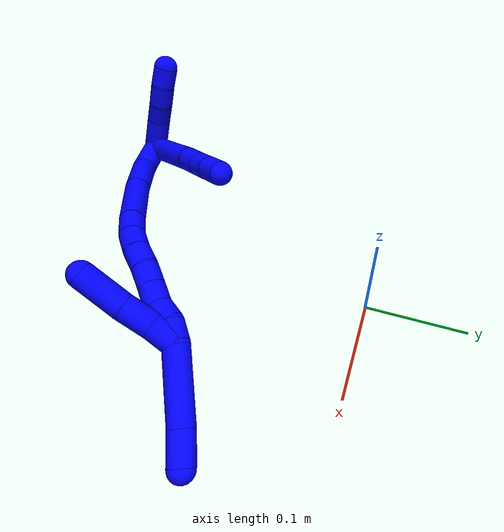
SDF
<sdf version="1.7">
 <world name="default">
  <model name="1">
   <static>0</static>
   <link name="1">
    <collision name="collision-cylinder-e_1_2_8">
     <pose>-0.008924 0.031201 -0.027361 -2.29072 -0.211815 0.46089</pose>
     <geometry><cylinder><radius>0.0125</radius><length>0.084894</length></cylinder></geometry>
     <surface>
      <friction><ode><mu>1.16</mu><mu2>1.16</mu2><slip1>0</slip1><slip2>0</slip2></ode></friction>
      <contact><ode><kp>1e+06</kp><kd>1</kd><max_vel>0</max_vel><min_depth>0.001</min_depth></ode></contact>
     </surface>
    </collision>
    <visual name="visual-cylinder-e_1_2_8">
     <pose>-0.008924 0.031201 -0.027361 -2.29072 -0.211815 0.46089</pose>
     <geometry><cylinder><radius>0.0125</radius><length>0.084894</length></cylinder></geometry>
     <material><ambient>0 0 1 1</ambient></material>
    </visual>
    <collision name="collision-cylinder-e_2_8_9">
     <pose>-0.01961 0.070592 -0.062775 -2.34774 -0.152276 0.36004</pose>
     <geometry><cylinder><radius>0.0125</radius><length>0.023241</length></cylinder></geometry>
     <surface>
      <friction><ode><mu>1.16</mu><mu2>1.16</mu2><slip1>0</slip1><slip2>0</slip2></ode></friction>
      <contact><ode><kp>1e+06</kp><kd>1</kd><max_vel>0</max_vel><min_depth>0.001</min_depth></ode></contact>
     </surface>
    </collision>
    <visual name="visual-cylinder-e_2_8_9">
     <pose>-0.01961 0.070592 -0.062775 -2.34774 -0.152276 0.36004</pose>
     <geometry><cylinder><radius>0.0125</radius><length>0.023241</length></cylinder></geometry>
     <material><ambient>0 0 1 1</ambient></material>
    </visual>
    <collision name="collision-cylinder-e_3_9_10">
     <pose>-0.023143 0.086074 -0.077447 -2.3079 -0.177837 0.397376</pose>
     <geometry><cylinder><radius>0.0125</radius><length>0.020013</length></cylinder></geometry>
     <surface>
      <friction><ode><mu>1.16</mu><mu2>1.16</mu2><slip1>0</slip1><slip2>0</slip2></ode></friction>
      <contact><ode><kp>1e+06</kp><kd>1</kd><max_vel>0</max_vel><min_depth>0.001</min_depth></ode></contact>
     </surface>
    </collision>
    <visual name="visual-cylinder-e_3_9_10">
     <pose>-0.023143 0.086074 -0.077447 -2.3079 -0.177837 0.397376</pose>
     <geometry><cylinder><radius>0.0125</radius><length>0.020013</length></cylinder></geometry>
     <material><ambient>0 0 1 1</ambient></material>
    </visual>
    <collision name="collision-cylinder-e_4_10_6">
     <pose>-0.026735 0.101105 -0.091562 -2.34019 -0.167538 0.391347</pose>
     <geometry><cylinder><radius>0.0125</radius><length>0.021852</length></cylinder></geometry>
     <surface>
      <friction><ode><mu>1.16</mu><mu2>1.16</mu2><slip1>0</slip1><slip2>0</slip2></ode></friction>
      <contact><ode><kp>1e+06</kp><kd>1</kd><max_vel>0</max_vel><min_depth>0.001</min_depth></ode></contact>
     </surface>
    </collision>
    <visual name="visual-cylinder-e_4_10_6">
     <pose>-0.026735 0.101105 -0.091562 -2.34019 -0.167538 0.391347</pose>
     <geometry><cylinder><radius>0.0125</radius><length>0.021852</length></cylinder></geometry>
     <material><ambient>0 0 1 1</ambient></material>
    </visual>
    <collision name="collision-cylinder-e_1_2_11">
     <pose>-0.016976 0.006355 0.003001 -1.12966 -1.1783 0.801232</pose>
     <geometry><cylinder><radius>0.0125</radius><length>0.036747</length></cylinder></geometry>
     <surface>
      <friction><ode><mu>1.16</mu><mu2>1.16</mu2><slip1>0</slip1><slip2>0</slip2></ode></friction>
      <contact><ode><kp>1e+06</kp><kd>1</kd><max_vel>0</max_vel><min_depth>0.001</min_depth></ode></contact>
     </surface>
    </collision>
    <visual name="visual-cylinder-e_1_2_11">
     <pose>-0.016976 0.006355 0.003001 -1.12966 -1.1783 0.801232</pose>
     <geometry><cylinder><radius>0.0125</radius><length>0.036747</length></cylinder></geometry>
     <material><ambient>0 0 1 1</ambient></material>
    </visual>
    <collision name="collision-cylinder-e_2_11_12">
     <pose>-0.04319 0.017951 0.00691 -1.39917 -1.04832 0.905605</pose>
     <geometry><cylinder><radius>0.0125</radius><length>0.021321</length></cylinder></geometry>
     <surface>
      <friction><ode><mu>1.16</mu><mu2>1.16</mu2><slip1>0</slip1><slip2>0</slip2></ode></friction>
      <contact><ode><kp>1e+06</kp><kd>1</kd><max_vel>0</max_vel><min_depth>0.001</min_depth></ode></contact>
     </surface>
    </collision>
    <visual name="visual-cylinder-e_2_11_12">
     <pose>-0.04319 0.017951 0.00691 -1.39917 -1.04832 0.905605</pose>
     <geometry><cylinder><radius>0.0125</radius><length>0.021321</length></cylinder></geometry>
     <material><ambient>0 0 1 1</ambient></material>
    </visual>
    <collision name="collision-cylinder-e_3_12_13">
     <pose>-0.062362 0.027271 0.009564 -1.16626 -1.15082 0.808594</pose>
     <geometry><cylinder><radius>0.0125</radius><length>0.021759</length></cylinder></geometry>
     <surface>
      <friction><ode><mu>1.16</mu><mu2>1.16</mu2><slip1>0</slip1><slip2>0</slip2></ode></friction>
      <contact><ode><kp>1e+06</kp><kd>1</kd><max_vel>0</max_vel><min_depth>0.001</min_depth></ode></contact>
     </surface>
    </collision>
    <visual name="visual-cylinder-e_3_12_13">
     <pose>-0.062362 0.027271 0.009564 -1.16626 -1.15082 0.808594</pose>
     <geometry><cylinder><radius>0.0125</radius><length>0.021759</length></cylinder></geometry>
     <material><ambient>0 0 1 1</ambient></material>
    </visual>
    <collision name="collision-cylinder-e_4_13_5">
     <pose>-0.081978 0.033631 0.012982 -0.938591 -1.28651 0.726498</pose>
     <geometry><cylinder><radius>0.0125</radius><length>0.020174</length></cylinder></geometry>
     <surface>
      <friction><ode><mu>1.16</mu><mu2>1.16</mu2><slip1>0</slip1><slip2>0</slip2></ode></friction>
      <contact><ode><kp>1e+06</kp><kd>1</kd><max_vel>0</max_vel><min_depth>0.001</min_depth></ode></contact>
     </surface>
    </collision>
    <visual name="visual-cylinder-e_4_13_5">
     <pose>-0.081978 0.033631 0.012982 -0.938591 -1.28651 0.726498</pose>
     <geometry><cylinder><radius>0.0125</radius><length>0.020174</length></cylinder></geometry>
     <material><ambient>0 0 1 1</ambient></material>
    </visual>
    <collision name="collision-cylinder-e_1_2_14">
     <pose>0.009573 0.021617 -0.004527 -1.77724 0.409026 -0.500017</pose>
     <geometry><cylinder><radius>0.0125</radius><length>0.048142</length></cylinder></geometry>
     <surface>
      <friction><ode><mu>1.16</mu><mu2>1.16</mu2><slip1>0</slip1><slip2>0</slip2></ode></friction>
      <contact><ode><kp>1e+06</kp><kd>1</kd><max_vel>0</max_vel><min_depth>0.001</min_depth></ode></contact>
     </surface>
    </collision>
    <visual name="visual-cylinder-e_1_2_14">
     <pose>0.009573 0.021617 -0.004527 -1.77724 0.409026 -0.500017</pose>
     <geometry><cylinder><radius>0.0125</radius><length>0.048142</length></cylinder></geometry>
     <material><ambient>0 0 1 1</ambient></material>
    </visual>
    <collision name="collision-cylinder-e_2_14_15">
     <pose>0.025119 0.06446 -0.015869 -1.88145 0.261754 -0.357164</pose>
     <geometry><cylinder><radius>0.0125</radius><length>0.04616</length></cylinder></geometry>
     <surface>
      <friction><ode><mu>1.16</mu><mu2>1.16</mu2><slip1>0</slip1><slip2>0</slip2></ode></friction>
      <contact><ode><kp>1e+06</kp><kd>1</kd><max_vel>0</max_vel><min_depth>0.001</min_depth></ode></contact>
     </surface>
    </collision>
    <visual name="visual-cylinder-e_2_14_15">
     <pose>0.025119 0.06446 -0.015869 -1.88145 0.261754 -0.357164</pose>
     <geometry><cylinder><radius>0.0125</radius><length>0.04616</length></cylinder></geometry>
     <material><ambient>0 0 1 1</ambient></material>
    </visual>
    <collision name="collision-cylinder-e_3_15_16">
     <pose>0.038735 0.113348 -0.034101 -1.96226 0.250052 -0.371361</pose>
     <geometry><cylinder><radius>0.0125</radius><length>0.061772</length></cylinder></geometry>
     <surface>
      <friction><ode><mu>1.16</mu><mu2>1.16</mu2><slip1>0</slip1><slip2>0</slip2></ode></friction>
      <contact><ode><kp>1e+06</kp><kd>1</kd><max_vel>0</max_vel><min_depth>0.001</min_depth></ode></contact>
     </surface>
    </collision>
    <visual name="visual-cylinder-e_3_15_16">
     <pose>0.038735 0.113348 -0.034101 -1.96226 0.250052 -0.371361</pose>
     <geometry><cylinder><radius>0.0125</radius><length>0.061772</length></cylinder></geometry>
     <material><ambient>0 0 1 1</ambient></material>
    </visual>
    <collision name="collision-cylinder-e_4_16_17">
     <pose>0.049751 0.150483 -0.050816 -2.08058 0.301345 -0.506525</pose>
     <geometry><cylinder><radius>0.0125</radius><length>0.02273</length></cylinder></geometry>
     <surface>
      <friction><ode><mu>1.16</mu><mu2>1.16</mu2><slip1>0</slip1><slip2>0</slip2></ode></friction>
      <contact><ode><kp>1e+06</kp><kd>1</kd><max_vel>0</max_vel><min_depth>0.001</min_depth></ode></contact>
     </surface>
    </collision>
    <visual name="visual-cylinder-e_4_16_17">
     <pose>0.049751 0.150483 -0.050816 -2.08058 0.301345 -0.506525</pose>
     <geometry><cylinder><radius>0.0125</radius><length>0.02273</length></cylinder></geometry>
     <material><ambient>0 0 1 1</ambient></material>
    </visual>
    <collision name="collision-cylinder-e_5_17_18">
     <pose>0.05606 0.167074 -0.062626 -2.31196 0.295358 -0.651556</pose>
     <geometry><cylinder><radius>0.0125</radius><length>0.020171</length></cylinder></geometry>
     <surface>
      <friction><ode><mu>1.16</mu><mu2>1.16</mu2><slip1>0</slip1><slip2>0</slip2></ode></friction>
      <contact><ode><kp>1e+06</kp><kd>1</kd><max_vel>0</max_vel><min_depth>0.001</min_depth></ode></contact>
     </surface>
    </collision>
    <visual name="visual-cylinder-e_5_17_18">
     <pose>0.05606 0.167074 -0.062626 -2.31196 0.295358 -0.651556</pose>
     <geometry><cylinder><radius>0.0125</radius><length>0.020171</length></cylinder></geometry>
     <material><ambient>0 0 1 1</ambient></material>
    </visual>
    <collision name="collision-cylinder-e_6_18_19">
     <pose>0.062013 0.180385 -0.076982 -2.4731 0.293262 -0.804221</pose>
     <geometry><cylinder><radius>0.0125</radius><length>0.020876</length></cylinder></geometry>
     <surface>
      <friction><ode><mu>1.16</mu><mu2>1.16</mu2><slip1>0</slip1><slip2>0</slip2></ode></friction>
      <contact><ode><kp>1e+06</kp><kd>1</kd><max_vel>0</max_vel><min_depth>0.001</min_depth></ode></contact>
     </surface>
    </collision>
    <visual name="visual-cylinder-e_6_18_19">
     <pose>0.062013 0.180385 -0.076982 -2.4731 0.293262 -0.804221</pose>
     <geometry><cylinder><radius>0.0125</radius><length>0.020876</length></cylinder></geometry>
     <material><ambient>0 0 1 1</ambient></material>
    </visual>
    <collision name="collision-cylinder-e_7_19_20">
     <pose>0.069522 0.191855 -0.092108 -2.51469 0.463075 -1.25771</pose>
     <geometry><cylinder><radius>0.0125</radius><length>0.020108</length></cylinder></geometry>
     <surface>
      <friction><ode><mu>1.16</mu><mu2>1.16</mu2><slip1>0</slip1><slip2>0</slip2></ode></friction>
      <contact><ode><kp>1e+06</kp><kd>1</kd><max_vel>0</max_vel><min_depth>0.001</min_depth></ode></contact>
     </surface>
    </collision>
    <visual name="visual-cylinder-e_7_19_20">
     <pose>0.069522 0.191855 -0.092108 -2.51469 0.463075 -1.25771</pose>
     <geometry><cylinder><radius>0.0125</radius><length>0.020108</length></cylinder></geometry>
     <material><ambient>0 0 1 1</ambient></material>
    </visual>
    <collision name="collision-cylinder-e_8_20_21">
     <pose>0.078575 0.20236 -0.106595 -2.51366 0.473653 -1.27841</pose>
     <geometry><cylinder><radius>0.0125</radius><length>0.020003</length></cylinder></geometry>
     <surface>
      <friction><ode><mu>1.16</mu><mu2>1.16</mu2><slip1>0</slip1><slip2>0</slip2></ode></friction>
      <contact><ode><kp>1e+06</kp><kd>1</kd><max_vel>0</max_vel><min_depth>0.001</min_depth></ode></contact>
     </surface>
    </collision>
    <visual name="visual-cylinder-e_8_20_21">
     <pose>0.078575 0.20236 -0.106595 -2.51366 0.473653 -1.27841</pose>
     <geometry><cylinder><radius>0.0125</radius><length>0.020003</length></cylinder></geometry>
     <material><ambient>0 0 1 1</ambient></material>
    </visual>
    <collision name="collision-cylinder-e_9_21_22">
     <pose>0.085176 0.21244 -0.122319 -2.6241 0.205091 -0.741619</pose>
     <geometry><cylinder><radius>0.0125</radius><length>0.02003</length></cylinder></geometry>
     <surface>
      <friction><ode><mu>1.16</mu><mu2>1.16</mu2><slip1>0</slip1><slip2>0</slip2></ode></friction>
      <contact><ode><kp>1e+06</kp><kd>1</kd><max_vel>0</max_vel><min_depth>0.001</min_depth></ode></contact>
     </surface>
    </collision>
    <visual name="visual-cylinder-e_9_21_22">
     <pose>0.085176 0.21244 -0.122319 -2.6241 0.205091 -0.741619</pose>
     <geometry><cylinder><radius>0.0125</radius><length>0.02003</length></cylinder></geometry>
     <material><ambient>0 0 1 1</ambient></material>
    </visual>
    <collision name="collision-cylinder-e_10_22_1">
     <pose>0.092094 0.222854 -0.137573 -2.45096 0.509364 -1.2529</pose>
     <geometry><cylinder><radius>0.0125</radius><length>0.020008</length></cylinder></geometry>
     <surface>
      <friction><ode><mu>1.16</mu><mu2>1.16</mu2><slip1>0</slip1><slip2>0</slip2></ode></friction>
      <contact><ode><kp>1e+06</kp><kd>1</kd><max_vel>0</max_vel><min_depth>0.001</min_depth></ode></contact>
     </surface>
    </collision>
    <visual name="visual-cylinder-e_10_22_1">
     <pose>0.092094 0.222854 -0.137573 -2.45096 0.509364 -1.2529</pose>
     <geometry><cylinder><radius>0.0125</radius><length>0.020008</length></cylinder></geometry>
     <material><ambient>0 0 1 1</ambient></material>
    </visual>
    <collision name="collision-cylinder-e_1_1_23">
     <pose>0.122034 0.243318 -0.162747 -2.46199 0.813135 -1.7667</pose>
     <geometry><cylinder><radius>0.0125</radius><length>0.068999</length></cylinder></geometry>
     <surface>
      <friction><ode><mu>1.16</mu><mu2>1.16</mu2><slip1>0</slip1><slip2>0</slip2></ode></friction>
      <contact><ode><kp>1e+06</kp><kd>1</kd><max_vel>0</max_vel><min_depth>0.001</min_depth></ode></contact>
     </surface>
    </collision>
    <visual name="visual-cylinder-e_1_1_23">
     <pose>0.122034 0.243318 -0.162747 -2.46199 0.813135 -1.7667</pose>
     <geometry><cylinder><radius>0.0125</radius><length>0.068999</length></cylinder></geometry>
     <material><ambient>0 0 1 1</ambient></material>
    </visual>
    <collision name="collision-cylinder-e_2_23_4">
     <pose>0.157555 0.266955 -0.188574 -2.27264 0.740591 -1.39327</pose>
     <geometry><cylinder><radius>0.0125</radius><length>0.031001</length></cylinder></geometry>
     <surface>
      <friction><ode><mu>1.16</mu><mu2>1.16</mu2><slip1>0</slip1><slip2>0</slip2></ode></friction>
      <contact><ode><kp>1e+06</kp><kd>1</kd><max_vel>0</max_vel><min_depth>0.001</min_depth></ode></contact>
     </surface>
    </collision>
    <visual name="visual-cylinder-e_2_23_4">
     <pose>0.157555 0.266955 -0.188574 -2.27264 0.740591 -1.39327</pose>
     <geometry><cylinder><radius>0.0125</radius><length>0.031001</length></cylinder></geometry>
     <material><ambient>0 0 1 1</ambient></material>
    </visual>
    <collision name="collision-cylinder-e_1_1_24">
     <pose>0.095067 0.227081 -0.131777 0.106285 -0.150044 -0.007996</pose>
     <geometry><cylinder><radius>0.0125</radius><length>0.025485</length></cylinder></geometry>
     <surface>
      <friction><ode><mu>1.16</mu><mu2>1.16</mu2><slip1>0</slip1><slip2>0</slip2></ode></friction>
      <contact><ode><kp>1e+06</kp><kd>1</kd><max_vel>0</max_vel><min_depth>0.001</min_depth></ode></contact>
     </surface>
    </collision>
    <visual name="visual-cylinder-e_1_1_24">
     <pose>0.095067 0.227081 -0.131777 0.106285 -0.150044 -0.007996</pose>
     <geometry><cylinder><radius>0.0125</radius><length>0.025485</length></cylinder></geometry>
     <material><ambient>0 0 1 1</ambient></material>
    </visual>
    <collision name="collision-cylinder-e_2_24_25">
     <pose>0.091323 0.226129 -0.104753 -0.026509 -0.126152 0.001674</pose>
     <geometry><cylinder><radius>0.0125</radius><length>0.029235</length></cylinder></geometry>
     <surface>
      <friction><ode><mu>1.16</mu><mu2>1.16</mu2><slip1>0</slip1><slip2>0</slip2></ode></friction>
      <contact><ode><kp>1e+06</kp><kd>1</kd><max_vel>0</max_vel><min_depth>0.001</min_depth></ode></contact>
     </surface>
    </collision>
    <visual name="visual-cylinder-e_2_24_25">
     <pose>0.091323 0.226129 -0.104753 -0.026509 -0.126152 0.001674</pose>
     <geometry><cylinder><radius>0.0125</radius><length>0.029235</length></cylinder></geometry>
     <material><ambient>0 0 1 1</ambient></material>
    </visual>
    <collision name="collision-cylinder-e_3_25_3">
     <pose>0.085184 0.226078 -0.068033 0.019572 -0.191099 -0.001876</pose>
     <geometry><cylinder><radius>0.0125</radius><length>0.04528</length></cylinder></geometry>
     <surface>
      <friction><ode><mu>1.16</mu><mu2>1.16</mu2><slip1>0</slip1><slip2>0</slip2></ode></friction>
      <contact><ode><kp>1e+06</kp><kd>1</kd><max_vel>0</max_vel><min_depth>0.001</min_depth></ode></contact>
     </surface>
    </collision>
    <visual name="visual-cylinder-e_3_25_3">
     <pose>0.085184 0.226078 -0.068033 0.019572 -0.191099 -0.001876</pose>
     <geometry><cylinder><radius>0.0125</radius><length>0.04528</length></cylinder></geometry>
     <material><ambient>0 0 1 1</ambient></material>
    </visual>
    <collision name="collision-sphere-3">
     <pose>0.080884 0.225643 -0.045809 0 -0 0</pose>
     <geometry><sphere><radius>0.0125</radius></sphere></geometry>
     <surface>
      <friction><ode><mu>1.16</mu><mu2>1.16</mu2><slip1>0</slip1><slip2>0</slip2></ode></friction>
      <contact><ode><kp>1e+06</kp><kd>1</kd><max_vel>0</max_vel><min_depth>0.001</min_depth></ode></contact>
     </surface>
    </collision>
    <visual name="visual-sphere-3">
     <pose>0.080884 0.225643 -0.045809 0 -0 0</pose>
     <geometry><sphere><radius>0.0125</radius></sphere></geometry>
     <material><ambient>0 0 1 1</ambient></material>
    </visual>
    <collision name="collision-sphere-25">
     <pose>0.089484 0.226513 -0.090257 0 -0 0</pose>
     <geometry><sphere><radius>0.0125</radius></sphere></geometry>
     <surface>
      <friction><ode><mu>1.16</mu><mu2>1.16</mu2><slip1>0</slip1><slip2>0</slip2></ode></friction>
      <contact><ode><kp>1e+06</kp><kd>1</kd><max_vel>0</max_vel><min_depth>0.001</min_depth></ode></contact>
     </surface>
    </collision>
    <visual name="visual-sphere-25">
     <pose>0.089484 0.226513 -0.090257 0 -0 0</pose>
     <geometry><sphere><radius>0.0125</radius></sphere></geometry>
     <material><ambient>0 0 1 1</ambient></material>
    </visual>
    <collision name="collision-sphere-24">
     <pose>0.093163 0.225745 -0.119249 0 -0 0</pose>
     <geometry><sphere><radius>0.0125</radius></sphere></geometry>
     <surface>
      <friction><ode><mu>1.16</mu><mu2>1.16</mu2><slip1>0</slip1><slip2>0</slip2></ode></friction>
      <contact><ode><kp>1e+06</kp><kd>1</kd><max_vel>0</max_vel><min_depth>0.001</min_depth></ode></contact>
     </surface>
    </collision>
    <visual name="visual-sphere-24">
     <pose>0.093163 0.225745 -0.119249 0 -0 0</pose>
     <geometry><sphere><radius>0.0125</radius></sphere></geometry>
     <material><ambient>0 0 1 1</ambient></material>
    </visual>
    <collision name="collision-sphere-4">
     <pose>0.168013 0.275692 -0.195961 0 -0 0</pose>
     <geometry><sphere><radius>0.0125</radius></sphere></geometry>
     <surface>
      <friction><ode><mu>1.16</mu><mu2>1.16</mu2><slip1>0</slip1><slip2>0</slip2></ode></friction>
      <contact><ode><kp>1e+06</kp><kd>1</kd><max_vel>0</max_vel><min_depth>0.001</min_depth></ode></contact>
     </surface>
    </collision>
    <visual name="visual-sphere-4">
     <pose>0.168013 0.275692 -0.195961 0 -0 0</pose>
     <geometry><sphere><radius>0.0125</radius></sphere></geometry>
     <material><ambient>0 0 1 1</ambient></material>
    </visual>
    <collision name="collision-sphere-23">
     <pose>0.147096 0.258219 -0.181188 0 -0 0</pose>
     <geometry><sphere><radius>0.0125</radius></sphere></geometry>
     <surface>
      <friction><ode><mu>1.16</mu><mu2>1.16</mu2><slip1>0</slip1><slip2>0</slip2></ode></friction>
      <contact><ode><kp>1e+06</kp><kd>1</kd><max_vel>0</max_vel><min_depth>0.001</min_depth></ode></contact>
     </surface>
    </collision>
    <visual name="visual-sphere-23">
     <pose>0.147096 0.258219 -0.181188 0 -0 0</pose>
     <geometry><sphere><radius>0.0125</radius></sphere></geometry>
     <material><ambient>0 0 1 1</ambient></material>
    </visual>
    <collision name="collision-sphere-1">
     <pose>0.096972 0.228418 -0.144305 0 -0 0</pose>
     <geometry><sphere><radius>0.0125</radius></sphere></geometry>
     <surface>
      <friction><ode><mu>1.16</mu><mu2>1.16</mu2><slip1>0</slip1><slip2>0</slip2></ode></friction>
      <contact><ode><kp>1e+06</kp><kd>1</kd><max_vel>0</max_vel><min_depth>0.001</min_depth></ode></contact>
     </surface>
    </collision>
    <visual name="visual-sphere-1">
     <pose>0.096972 0.228418 -0.144305 0 -0 0</pose>
     <geometry><sphere><radius>0.0125</radius></sphere></geometry>
     <material><ambient>0 0 1 1</ambient></material>
    </visual>
    <collision name="collision-sphere-22">
     <pose>0.087216 0.21729 -0.13084 0 -0 0</pose>
     <geometry><sphere><radius>0.0125</radius></sphere></geometry>
     <surface>
      <friction><ode><mu>1.16</mu><mu2>1.16</mu2><slip1>0</slip1><slip2>0</slip2></ode></friction>
      <contact><ode><kp>1e+06</kp><kd>1</kd><max_vel>0</max_vel><min_depth>0.001</min_depth></ode></contact>
     </surface>
    </collision>
    <visual name="visual-sphere-22">
     <pose>0.087216 0.21729 -0.13084 0 -0 0</pose>
     <geometry><sphere><radius>0.0125</radius></sphere></geometry>
     <material><ambient>0 0 1 1</ambient></material>
    </visual>
    <collision name="collision-sphere-21">
     <pose>0.083137 0.207589 -0.113798 0 -0 0</pose>
     <geometry><sphere><radius>0.0125</radius></sphere></geometry>
     <surface>
      <friction><ode><mu>1.16</mu><mu2>1.16</mu2><slip1>0</slip1><slip2>0</slip2></ode></friction>
      <contact><ode><kp>1e+06</kp><kd>1</kd><max_vel>0</max_vel><min_depth>0.001</min_depth></ode></contact>
     </surface>
    </collision>
    <visual name="visual-sphere-21">
     <pose>0.083137 0.207589 -0.113798 0 -0 0</pose>
     <geometry><sphere><radius>0.0125</radius></sphere></geometry>
     <material><ambient>0 0 1 1</ambient></material>
    </visual>
    <collision name="collision-sphere-11">
     <pose>-0.033952 0.01271 0.006001 0 -0 0</pose>
     <geometry><sphere><radius>0.0125</radius></sphere></geometry>
     <surface>
      <friction><ode><mu>1.16</mu><mu2>1.16</mu2><slip1>0</slip1><slip2>0</slip2></ode></friction>
      <contact><ode><kp>1e+06</kp><kd>1</kd><max_vel>0</max_vel><min_depth>0.001</min_depth></ode></contact>
     </surface>
    </collision>
    <visual name="visual-sphere-11">
     <pose>-0.033952 0.01271 0.006001 0 -0 0</pose>
     <geometry><sphere><radius>0.0125</radius></sphere></geometry>
     <material><ambient>0 0 1 1</ambient></material>
    </visual>
    <collision name="collision-sphere-6">
     <pose>-0.028557 0.108844 -0.099057 0 -0 0</pose>
     <geometry><sphere><radius>0.0125</radius></sphere></geometry>
     <surface>
      <friction><ode><mu>1.16</mu><mu2>1.16</mu2><slip1>0</slip1><slip2>0</slip2></ode></friction>
      <contact><ode><kp>1e+06</kp><kd>1</kd><max_vel>0</max_vel><min_depth>0.001</min_depth></ode></contact>
     </surface>
    </collision>
    <visual name="visual-sphere-6">
     <pose>-0.028557 0.108844 -0.099057 0 -0 0</pose>
     <geometry><sphere><radius>0.0125</radius></sphere></geometry>
     <material><ambient>0 0 1 1</ambient></material>
    </visual>
    <collision name="collision-sphere-10">
     <pose>-0.024913 0.093366 -0.084067 0 -0 0</pose>
     <geometry><sphere><radius>0.0125</radius></sphere></geometry>
     <surface>
      <friction><ode><mu>1.16</mu><mu2>1.16</mu2><slip1>0</slip1><slip2>0</slip2></ode></friction>
      <contact><ode><kp>1e+06</kp><kd>1</kd><max_vel>0</max_vel><min_depth>0.001</min_depth></ode></contact>
     </surface>
    </collision>
    <visual name="visual-sphere-10">
     <pose>-0.024913 0.093366 -0.084067 0 -0 0</pose>
     <geometry><sphere><radius>0.0125</radius></sphere></geometry>
     <material><ambient>0 0 1 1</ambient></material>
    </visual>
    <collision name="collision-sphere-9">
     <pose>-0.021373 0.078782 -0.070827 0 -0 0</pose>
     <geometry><sphere><radius>0.0125</radius></sphere></geometry>
     <surface>
      <friction><ode><mu>1.16</mu><mu2>1.16</mu2><slip1>0</slip1><slip2>0</slip2></ode></friction>
      <contact><ode><kp>1e+06</kp><kd>1</kd><max_vel>0</max_vel><min_depth>0.001</min_depth></ode></contact>
     </surface>
    </collision>
    <visual name="visual-sphere-9">
     <pose>-0.021373 0.078782 -0.070827 0 -0 0</pose>
     <geometry><sphere><radius>0.0125</radius></sphere></geometry>
     <material><ambient>0 0 1 1</ambient></material>
    </visual>
    <collision name="collision-sphere-2">
     <geometry><sphere><radius>0.0125</radius></sphere></geometry>
     <surface>
      <friction><ode><mu>1.16</mu><mu2>1.16</mu2><slip1>0</slip1><slip2>0</slip2></ode></friction>
      <contact><ode><kp>1e+06</kp><kd>1</kd><max_vel>0</max_vel><min_depth>0.001</min_depth></ode></contact>
     </surface>
    </collision>
    <visual name="visual-sphere-2">
     <geometry><sphere><radius>0.0125</radius></sphere></geometry>
     <material><ambient>0 0 1 1</ambient></material>
    </visual>
    <collision name="collision-sphere-19">
     <pose>0.06503 0.186578 -0.084824 0 -0 0</pose>
     <geometry><sphere><radius>0.0125</radius></sphere></geometry>
     <surface>
      <friction><ode><mu>1.16</mu><mu2>1.16</mu2><slip1>0</slip1><slip2>0</slip2></ode></friction>
      <contact><ode><kp>1e+06</kp><kd>1</kd><max_vel>0</max_vel><min_depth>0.001</min_depth></ode></contact>
     </surface>
    </collision>
    <visual name="visual-sphere-19">
     <pose>0.06503 0.186578 -0.084824 0 -0 0</pose>
     <geometry><sphere><radius>0.0125</radius></sphere></geometry>
     <material><ambient>0 0 1 1</ambient></material>
    </visual>
    <collision name="collision-sphere-8">
     <pose>-0.017848 0.062402 -0.054722 0 -0 0</pose>
     <geometry><sphere><radius>0.0125</radius></sphere></geometry>
     <surface>
      <friction><ode><mu>1.16</mu><mu2>1.16</mu2><slip1>0</slip1><slip2>0</slip2></ode></friction>
      <contact><ode><kp>1e+06</kp><kd>1</kd><max_vel>0</max_vel><min_depth>0.001</min_depth></ode></contact>
     </surface>
    </collision>
    <visual name="visual-sphere-8">
     <pose>-0.017848 0.062402 -0.054722 0 -0 0</pose>
     <geometry><sphere><radius>0.0125</radius></sphere></geometry>
     <material><ambient>0 0 1 1</ambient></material>
    </visual>
    <collision name="collision-sphere-12">
     <pose>-0.052428 0.023193 0.007818 0 -0 0</pose>
     <geometry><sphere><radius>0.0125</radius></sphere></geometry>
     <surface>
      <friction><ode><mu>1.16</mu><mu2>1.16</mu2><slip1>0</slip1><slip2>0</slip2></ode></friction>
      <contact><ode><kp>1e+06</kp><kd>1</kd><max_vel>0</max_vel><min_depth>0.001</min_depth></ode></contact>
     </surface>
    </collision>
    <visual name="visual-sphere-12">
     <pose>-0.052428 0.023193 0.007818 0 -0 0</pose>
     <geometry><sphere><radius>0.0125</radius></sphere></geometry>
     <material><ambient>0 0 1 1</ambient></material>
    </visual>
    <collision name="collision-sphere-13">
     <pose>-0.072296 0.031349 0.01131 0 -0 0</pose>
     <geometry><sphere><radius>0.0125</radius></sphere></geometry>
     <surface>
      <friction><ode><mu>1.16</mu><mu2>1.16</mu2><slip1>0</slip1><slip2>0</slip2></ode></friction>
      <contact><ode><kp>1e+06</kp><kd>1</kd><max_vel>0</max_vel><min_depth>0.001</min_depth></ode></contact>
     </surface>
    </collision>
    <visual name="visual-sphere-13">
     <pose>-0.072296 0.031349 0.01131 0 -0 0</pose>
     <geometry><sphere><radius>0.0125</radius></sphere></geometry>
     <material><ambient>0 0 1 1</ambient></material>
    </visual>
    <collision name="collision-sphere-5">
     <pose>-0.091661 0.035914 0.014654 0 -0 0</pose>
     <geometry><sphere><radius>0.0125</radius></sphere></geometry>
     <surface>
      <friction><ode><mu>1.16</mu><mu2>1.16</mu2><slip1>0</slip1><slip2>0</slip2></ode></friction>
      <contact><ode><kp>1e+06</kp><kd>1</kd><max_vel>0</max_vel><min_depth>0.001</min_depth></ode></contact>
     </surface>
    </collision>
    <visual name="visual-sphere-5">
     <pose>-0.091661 0.035914 0.014654 0 -0 0</pose>
     <geometry><sphere><radius>0.0125</radius></sphere></geometry>
     <material><ambient>0 0 1 1</ambient></material>
    </visual>
    <collision name="collision-sphere-14">
     <pose>0.019147 0.043233 -0.009054 0 -0 0</pose>
     <geometry><sphere><radius>0.0125</radius></sphere></geometry>
     <surface>
      <friction><ode><mu>1.16</mu><mu2>1.16</mu2><slip1>0</slip1><slip2>0</slip2></ode></friction>
      <contact><ode><kp>1e+06</kp><kd>1</kd><max_vel>0</max_vel><min_depth>0.001</min_depth></ode></contact>
     </surface>
    </collision>
    <visual name="visual-sphere-14">
     <pose>0.019147 0.043233 -0.009054 0 -0 0</pose>
     <geometry><sphere><radius>0.0125</radius></sphere></geometry>
     <material><ambient>0 0 1 1</ambient></material>
    </visual>
    <collision name="collision-sphere-15">
     <pose>0.031092 0.085686 -0.022684 0 -0 0</pose>
     <geometry><sphere><radius>0.0125</radius></sphere></geometry>
     <surface>
      <friction><ode><mu>1.16</mu><mu2>1.16</mu2><slip1>0</slip1><slip2>0</slip2></ode></friction>
      <contact><ode><kp>1e+06</kp><kd>1</kd><max_vel>0</max_vel><min_depth>0.001</min_depth></ode></contact>
     </surface>
    </collision>
    <visual name="visual-sphere-15">
     <pose>0.031092 0.085686 -0.022684 0 -0 0</pose>
     <geometry><sphere><radius>0.0125</radius></sphere></geometry>
     <material><ambient>0 0 1 1</ambient></material>
    </visual>
    <collision name="collision-sphere-16">
     <pose>0.046378 0.14101 -0.045519 0 -0 0</pose>
     <geometry><sphere><radius>0.0125</radius></sphere></geometry>
     <surface>
      <friction><ode><mu>1.16</mu><mu2>1.16</mu2><slip1>0</slip1><slip2>0</slip2></ode></friction>
      <contact><ode><kp>1e+06</kp><kd>1</kd><max_vel>0</max_vel><min_depth>0.001</min_depth></ode></contact>
     </surface>
    </collision>
    <visual name="visual-sphere-16">
     <pose>0.046378 0.14101 -0.045519 0 -0 0</pose>
     <geometry><sphere><radius>0.0125</radius></sphere></geometry>
     <material><ambient>0 0 1 1</ambient></material>
    </visual>
    <collision name="collision-sphere-17">
     <pose>0.053124 0.159956 -0.056112 0 -0 0</pose>
     <geometry><sphere><radius>0.0125</radius></sphere></geometry>
     <surface>
      <friction><ode><mu>1.16</mu><mu2>1.16</mu2><slip1>0</slip1><slip2>0</slip2></ode></friction>
      <contact><ode><kp>1e+06</kp><kd>1</kd><max_vel>0</max_vel><min_depth>0.001</min_depth></ode></contact>
     </surface>
    </collision>
    <visual name="visual-sphere-17">
     <pose>0.053124 0.159956 -0.056112 0 -0 0</pose>
     <geometry><sphere><radius>0.0125</radius></sphere></geometry>
     <material><ambient>0 0 1 1</ambient></material>
    </visual>
    <collision name="collision-sphere-18">
     <pose>0.058996 0.174191 -0.069141 0 -0 0</pose>
     <geometry><sphere><radius>0.0125</radius></sphere></geometry>
     <surface>
      <friction><ode><mu>1.16</mu><mu2>1.16</mu2><slip1>0</slip1><slip2>0</slip2></ode></friction>
      <contact><ode><kp>1e+06</kp><kd>1</kd><max_vel>0</max_vel><min_depth>0.001</min_depth></ode></contact>
     </surface>
    </collision>
    <visual name="visual-sphere-18">
     <pose>0.058996 0.174191 -0.069141 0 -0 0</pose>
     <geometry><sphere><radius>0.0125</radius></sphere></geometry>
     <material><ambient>0 0 1 1</ambient></material>
    </visual>
    <collision name="collision-sphere-20">
     <pose>0.074013 0.197132 -0.099393 0 -0 0</pose>
     <geometry><sphere><radius>0.0125</radius></sphere></geometry>
     <surface>
      <friction><ode><mu>1.16</mu><mu2>1.16</mu2><slip1>0</slip1><slip2>0</slip2></ode></friction>
      <contact><ode><kp>1e+06</kp><kd>1</kd><max_vel>0</max_vel><min_depth>0.001</min_depth></ode></contact>
     </surface>
    </collision>
    <visual name="visual-sphere-20">
     <pose>0.074013 0.197132 -0.099393 0 -0 0</pose>
     <geometry><sphere><radius>0.0125</radius></sphere></geometry>
     <material><ambient>0 0 1 1</ambient></material>
    </visual>
    <inertial>
     <pose>0.039368 0.128003 -0.065934 0 -0 0</pose>
     <mass>0.75</mass>
     <inertia>
      <ixx>9.5e-05</ixx>
      <ixy>0</ixy>
      <ixz>0</ixz>
      <iyy>1.7e-05</iyy>
      <iyz>0</iyz>
      <izz>-0.000138</izz>
     </inertia>
    </inertial>
   </link>
   <pose>-0.136693 -0.285449 0.015504 1.14785 0.800288 -0.400488</pose>
  </model>
 </world>
</sdf>
